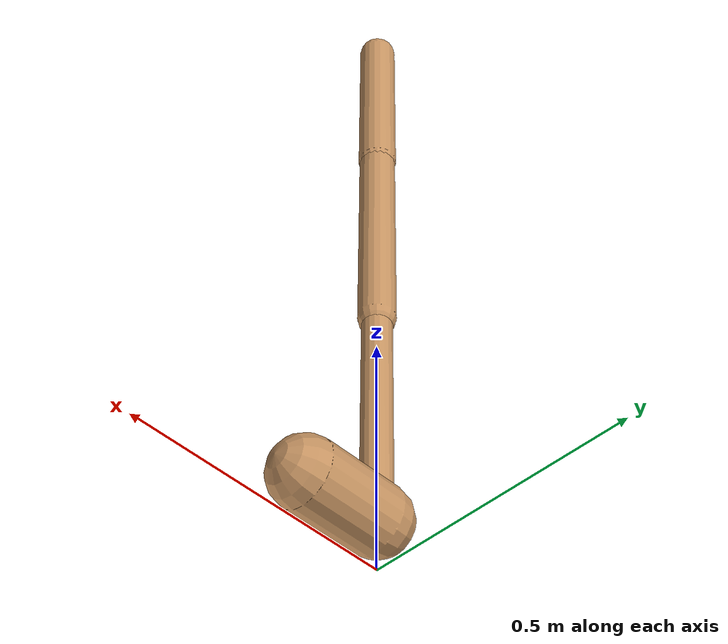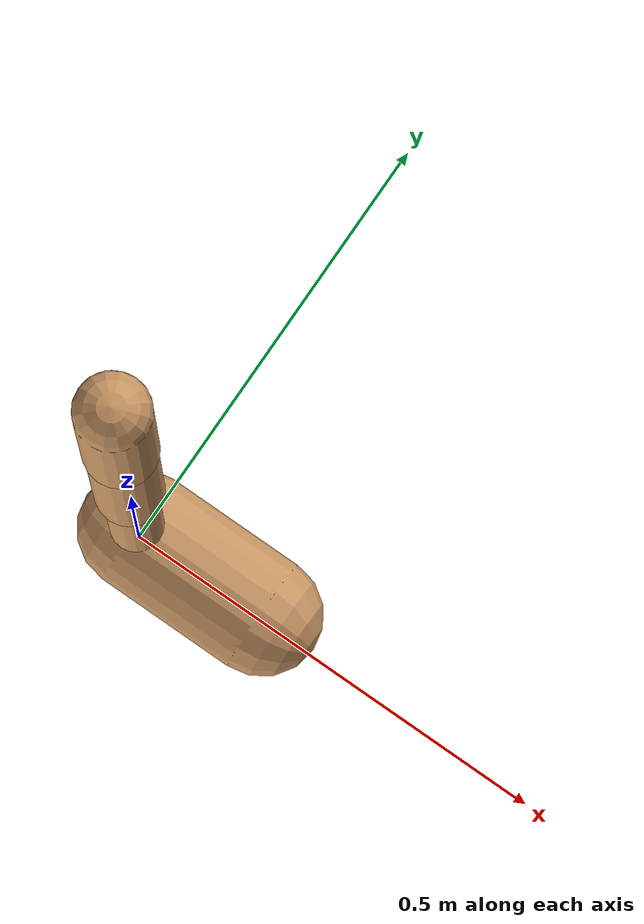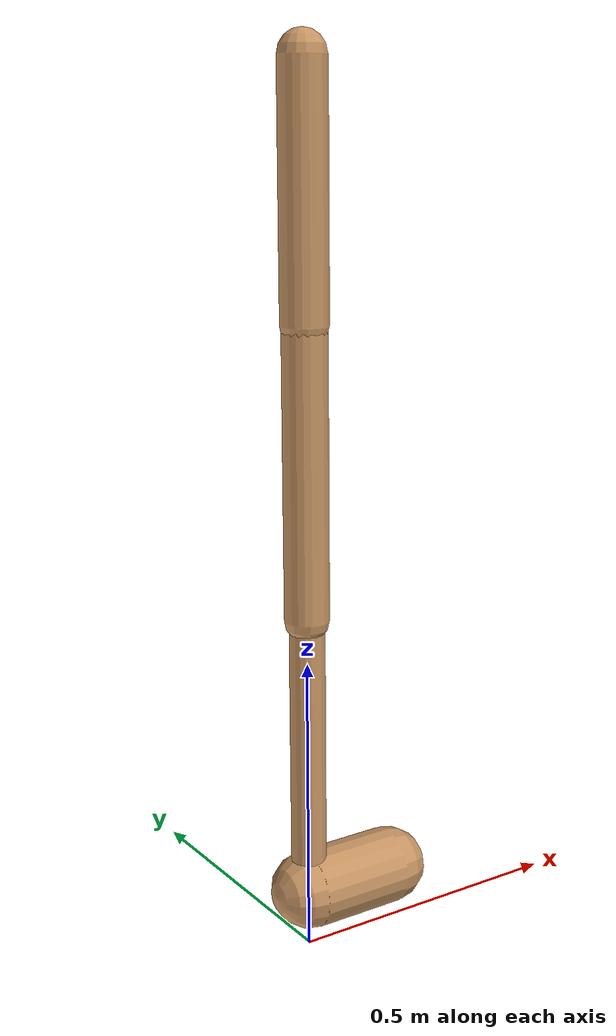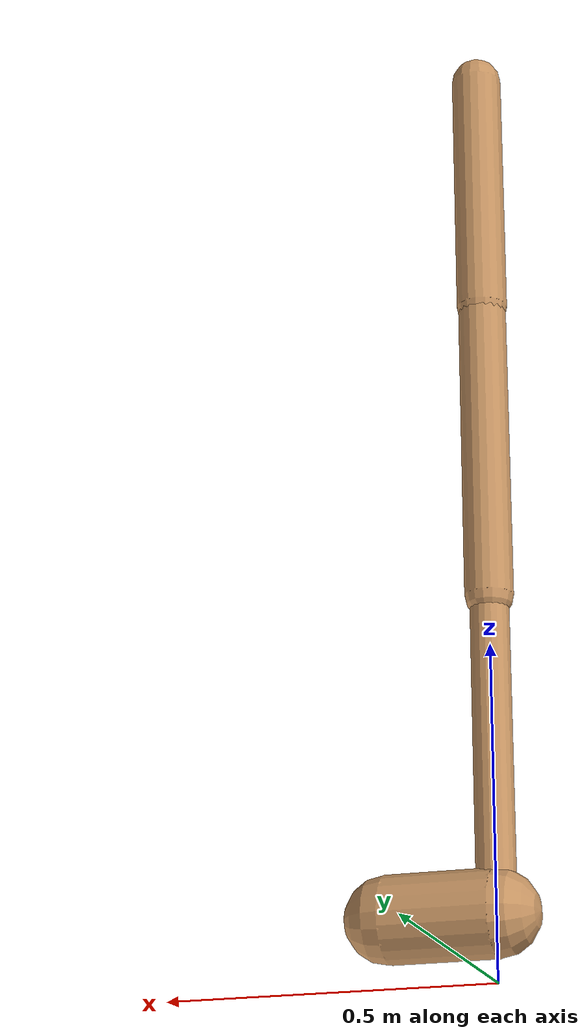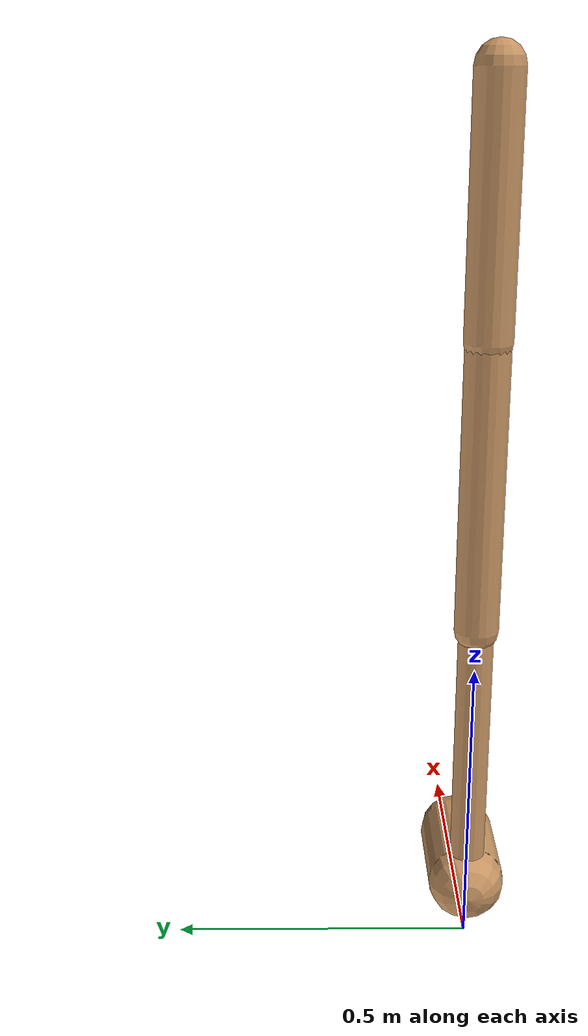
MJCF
<mujoco model="walker2d">
  <compiler angle="degree" coordinate="global" inertiafromgeom="true" />
  <default>
    <joint armature="0.01" damping=".1" limited="true" />
    <geom conaffinity="0" condim="3" contype="1" density="1000" friction="0.8 .1 .1" rgba="0.8 0.6 .4 1" />
  </default>
  <option integrator="RK4" timestep="0.002" />
  <worldbody>

    <body name="torso" pos="0 0 0.04992325822605918">
      <joint armature="0" axis="1 0 0" damping="0" limited="false" name="ignorex" pos="0 0 0" stiffness="0" type="slide" />
      <joint armature="0" axis="0 0 1" damping="0" limited="false" name="ignorez" pos="0 0 0" ref="1.25" stiffness="0" type="slide" />
      <joint armature="0" axis="0 1 0" damping="0" limited="false" name="ignorey" pos="0 0 0" stiffness="0" type="hinge" />
      <geom fromto="0 0 1.45 0 0 1.05" name="torso_geom" size="0.03882015502583472" type="capsule" />
      <body name="thigh">
        <joint axis="0 -1 0" name="thigh_joint" pos="0 0 1.05" range="-150 0" type="hinge" />
        <geom fromto="0.0 0.0 1.05 0.0 0.0 0.5763521408402877" name="thigh_geom" size="0.036746600059225386" type="capsule" />
        <body name="leg" pos="0.0 0.0 -0.023647859159712237">
          <joint axis="0 -1 0" name="leg_joint" pos="0 0 0.6" range="-150 0" type="hinge" />
          <geom fromto="0.0 0.0 0.6 0.0 0.0 0.07372460093365307" name="leg_geom" size="0.029397280047380306" type="capsule" />
          <body name="foot" pos="0.0 0.0 -0.026275399066346933">
            <joint axis="0 -1 0" name="foot_joint" pos="0 0 0.1" range="-45 45" type="hinge" />
            <geom fromto="0.0 0.0 0.1 0.1605988193905156 0.0 0.1" name="foot_geom" size="0.06482288806076038" type="capsule" />
          </body>
        </body>
      </body>

      <body name="thigh_left">
        <joint axis="0 -1 0" name="thigh_left_joint" pos="0 0 1.05" range="-150 0" type="hinge" />
        <geom fromto="0.0 0.0 1.05 0.0 0.0 0.5763521408402877" name="thigh_left_geom" rgba=".7 .3 .6 1" size="0.036746600059225386" type="capsule" />
        <body name="leg_left" pos="0.0 0.0 -0.023647859159712237">
          <joint axis="0 -1 0" name="leg_left_joint" pos="0 0 0.6" range="-150 0" type="hinge" />
          <geom fromto="0.0 0.0 0.6 0.0 0.0 0.07372460093365307" name="leg_left_geom" rgba=".7 .3 .6 1" size="0.029397280047380306" type="capsule" />
          <body name="foot_left" pos="0.0 0.0 -0.026275399066346933">
            <joint axis="0 -1 0" name="foot_left_joint" pos="0 0 0.1" range="-45 45" type="hinge" />
            <geom fromto="0.0 0.0 0.1 0.1605988193905156 0.0 0.1" name="foot_left_geom" rgba=".7 .3 .6 1" size="0.06482288806076038" type="capsule" />
          </body>
        </body>
      </body>
    </body>
  </worldbody>
  <actuator>

    <motor ctrllimited="true" ctrlrange="-1.0 1.0" gear="100" joint="thigh_joint" />
    <motor ctrllimited="true" ctrlrange="-1.0 1.0" gear="100" joint="leg_joint" />
    <motor ctrllimited="true" ctrlrange="-1.0 1.0" gear="100" joint="foot_joint" />
    <motor ctrllimited="true" ctrlrange="-1.0 1.0" gear="100" joint="thigh_left_joint" />
    <motor ctrllimited="true" ctrlrange="-1.0 1.0" gear="100" joint="leg_left_joint" />
    <motor ctrllimited="true" ctrlrange="-1.0 1.0" gear="100" joint="foot_left_joint" />

  </actuator>
</mujoco>
